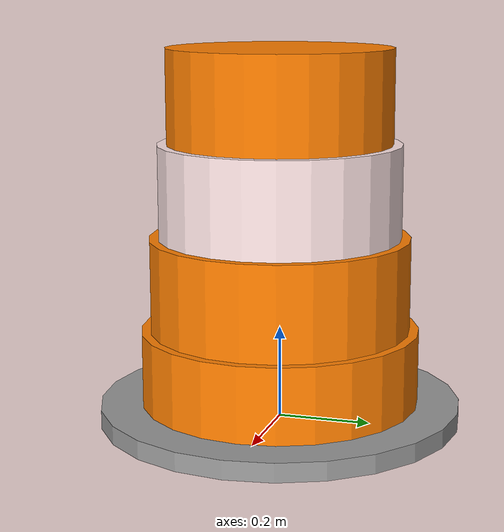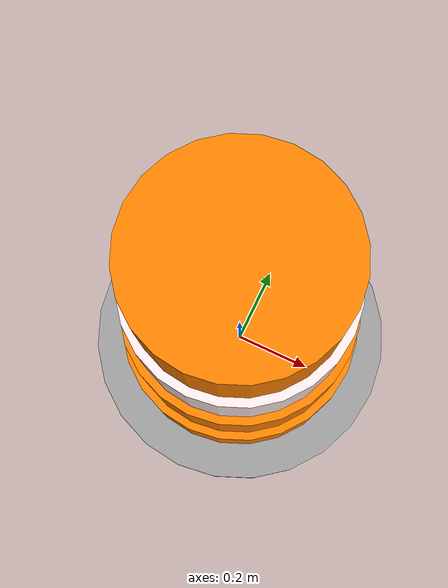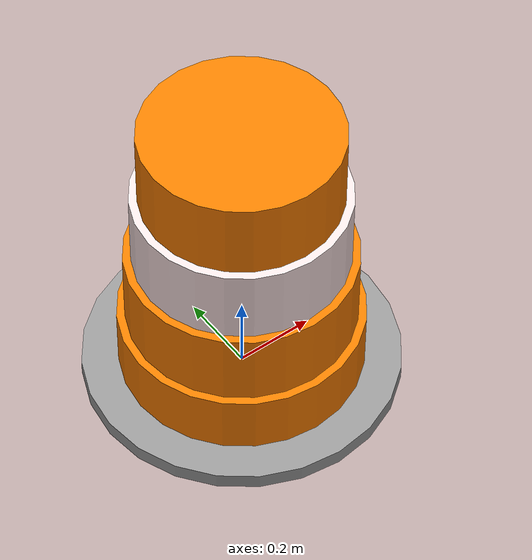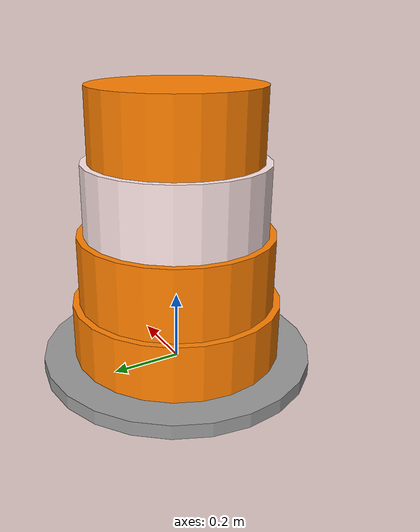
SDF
<?xml version='1.0'?>
<sdf version='1.6'>
  <model name='construction_barrel_orange'>
    <link name='rubber_skirt'>
      <pose frame=''>0 0 0.02 0 -0 0</pose>
      <inertial>
        <mass>1</mass>
        <inertia>
          <ixx>0.145833</ixx>
          <ixy>0</ixy>
          <ixz>0</ixz>
          <iyy>0.145833</iyy>
          <iyz>0</iyz>
          <izz>0.125</izz>
        </inertia>
        <pose frame=''>0 0 0 0 -0 0</pose>
      </inertial>
      <self_collide>0</self_collide>
      <kinematic>0</kinematic>
      <visual name='visual'>
        <pose frame=''>0 0 0 0 -0 0</pose>
        <geometry>
          <cylinder>
            <radius>0.39</radius>
            <length>0.04</length>
          </cylinder>
        </geometry>
        <material>
          <lighting>1</lighting>
          <script>
            <uri>file://media/materials/scripts/gazebo.material</uri>
            <name>Gazebo/Grey</name>
          </script>
          <shader type='pixel'>
            <normal_map>__default__</normal_map>
          </shader>
          <ambient>0.3 0.3 0.3 1</ambient>
          <diffuse>0.7 0.7 0.7 1</diffuse>
          <specular>0.01 0.01 0.01 1</specular>
          <emissive>0 0 0 1</emissive>
        </material>
        <transparency>0</transparency>
        <cast_shadows>1</cast_shadows>
      </visual>
      <collision name='collision'>
        <laser_retro>0</laser_retro>
        <max_contacts>10</max_contacts>
        <pose frame=''>0 0 0 0 -0 0</pose>
        <geometry>
          <cylinder>
            <radius>0.39</radius>
            <length>0.04</length>
          </cylinder>
        </geometry>
        <surface>
          <friction>
            <ode>
              <mu>1</mu>
              <mu2>1</mu2>
              <fdir1>0 0 0</fdir1>
              <slip1>0</slip1>
              <slip2>0</slip2>
            </ode>
            <torsional>
              <coefficient>1</coefficient>
              <patch_radius>0</patch_radius>
              <surface_radius>0</surface_radius>
              <use_patch_radius>1</use_patch_radius>
              <ode>
                <slip>0</slip>
              </ode>
            </torsional>
          </friction>
          <bounce>
            <restitution_coefficient>0</restitution_coefficient>
            <threshold>1e+06</threshold>
          </bounce>
          <contact>
            <collide_without_contact>0</collide_without_contact>
            <collide_without_contact_bitmask>1</collide_without_contact_bitmask>
            <collide_bitmask>1</collide_bitmask>
            <ode>
              <soft_cfm>0</soft_cfm>
              <soft_erp>0.2</soft_erp>
              <kp>1e+13</kp>
              <kd>1</kd>
              <max_vel>0.01</max_vel>
              <min_depth>0</min_depth>
            </ode>
            <bullet>
              <split_impulse>1</split_impulse>
              <split_impulse_penetration_threshold>-0.01</split_impulse_penetration_threshold>
              <soft_cfm>0</soft_cfm>
              <soft_erp>0.2</soft_erp>
              <kp>1e+13</kp>
              <kd>1</kd>
            </bullet>
          </contact>
        </surface>
      </collision>
    </link>
    <link name='drum_1'>
      <pose frame=''>0 0 0.1 0 -0 0</pose>
      <inertial>
        <mass>0.201505</mass>
        <inertia>
          <ixx>0.0132759</ixx>
          <ixy>0</ixy>
          <ixz>0</ixz>
          <iyy>0.0132759</iyy>
          <iyz>0</iyz>
          <izz>0.0251882</izz>
        </inertia>
        <pose frame=''>0 0 0 0 -0 0</pose>
      </inertial>
      <self_collide>0</self_collide>
      <kinematic>0</kinematic>
      <visual name='visual'>
        <geometry>
          <cylinder>
            <radius>0.3</radius>
            <length>0.2</length>
          </cylinder>
        </geometry>
        <material>
          <script>
            <name>Gazebo/Grey</name>
            <uri>file://media/materials/scripts/gazebo.material</uri>
          </script>
          <shader type='pixel'>
            <normal_map>__default__</normal_map>
          </shader>
          <ambient>1 0.5 0 1</ambient>
          <diffuse>1 0.5 0 1</diffuse>
          <specular>1 0.5 0 1</specular>
          <emissive>0 0 0 1</emissive>
        </material>
        <pose frame=''>0 0 0 0 -0 0</pose>
        <transparency>0</transparency>
        <cast_shadows>1</cast_shadows>
      </visual>
      <collision name='collision'>
        <laser_retro>0</laser_retro>
        <max_contacts>10</max_contacts>
        <pose frame=''>0 0 0 0 -0 0</pose>
        <geometry>
          <cylinder>
            <radius>0.3</radius>
            <length>0.2</length>
          </cylinder>
        </geometry>
        <surface>
          <friction>
            <ode>
              <mu>1</mu>
              <mu2>1</mu2>
              <fdir1>0 0 0</fdir1>
              <slip1>0</slip1>
              <slip2>0</slip2>
            </ode>
            <torsional>
              <coefficient>1</coefficient>
              <patch_radius>0</patch_radius>
              <surface_radius>0</surface_radius>
              <use_patch_radius>1</use_patch_radius>
              <ode>
                <slip>0</slip>
              </ode>
            </torsional>
          </friction>
          <bounce>
            <restitution_coefficient>0</restitution_coefficient>
            <threshold>1e+06</threshold>
          </bounce>
          <contact>
            <collide_without_contact>0</collide_without_contact>
            <collide_without_contact_bitmask>1</collide_without_contact_bitmask>
            <collide_bitmask>1</collide_bitmask>
            <ode>
              <soft_cfm>0</soft_cfm>
              <soft_erp>0.2</soft_erp>
              <kp>1e+13</kp>
              <kd>1</kd>
              <max_vel>0.01</max_vel>
              <min_depth>0</min_depth>
            </ode>
            <bullet>
              <split_impulse>1</split_impulse>
              <split_impulse_penetration_threshold>-0.01</split_impulse_penetration_threshold>
              <soft_cfm>0</soft_cfm>
              <soft_erp>0.2</soft_erp>
              <kp>1e+13</kp>
              <kd>1</kd>
            </bullet>
          </contact>
        </surface>
      </collision>
    </link>
    <link name='drum_2'>
      <pose frame=''>0 0 0.3 0 -0 0</pose>
      <inertial>
        <mass>0.201505</mass>
        <inertia>
          <ixx>0.0132759</ixx>
          <ixy>0</ixy>
          <ixz>0</ixz>
          <iyy>0.0132759</iyy>
          <iyz>0</iyz>
          <izz>0.0251882</izz>
        </inertia>
        <pose frame=''>0 0 0 0 -0 0</pose>
      </inertial>
      <self_collide>0</self_collide>
      <kinematic>0</kinematic>
      <visual name='visual'>
        <geometry>
          <cylinder>
            <radius>0.28</radius>
            <length>0.2</length>
          </cylinder>
        </geometry>
        <material>
          <script>
            <name>Gazebo/Grey</name>
            <uri>file://media/materials/scripts/gazebo.material</uri>
          </script>
          <shader type='pixel'>
            <normal_map>__default__</normal_map>
          </shader>
          <ambient>1 0.5 0 1</ambient>
          <diffuse>1 0.5 0 1</diffuse>
          <specular>1 0.5 0 1</specular>
          <emissive>0 0 0 1</emissive>
        </material>
        <pose frame=''>0 0 0 0 -0 0</pose>
        <transparency>0</transparency>
        <cast_shadows>1</cast_shadows>
      </visual>
      <collision name='collision'>
        <laser_retro>0</laser_retro>
        <max_contacts>10</max_contacts>
        <pose frame=''>0 0 0 0 -0 0</pose>
        <geometry>
          <cylinder>
            <radius>0.28</radius>
            <length>0.2</length>
          </cylinder>
        </geometry>
        <surface>
          <friction>
            <ode>
              <mu>1</mu>
              <mu2>1</mu2>
              <fdir1>0 0 0</fdir1>
              <slip1>0</slip1>
              <slip2>0</slip2>
            </ode>
            <torsional>
              <coefficient>1</coefficient>
              <patch_radius>0</patch_radius>
              <surface_radius>0</surface_radius>
              <use_patch_radius>1</use_patch_radius>
              <ode>
                <slip>0</slip>
              </ode>
            </torsional>
          </friction>
          <bounce>
            <restitution_coefficient>0</restitution_coefficient>
            <threshold>1e+06</threshold>
          </bounce>
          <contact>
            <collide_without_contact>0</collide_without_contact>
            <collide_without_contact_bitmask>1</collide_without_contact_bitmask>
            <collide_bitmask>1</collide_bitmask>
            <ode>
              <soft_cfm>0</soft_cfm>
              <soft_erp>0.2</soft_erp>
              <kp>1e+13</kp>
              <kd>1</kd>
              <max_vel>0.01</max_vel>
              <min_depth>0</min_depth>
            </ode>
            <bullet>
              <split_impulse>1</split_impulse>
              <split_impulse_penetration_threshold>-0.01</split_impulse_penetration_threshold>
              <soft_cfm>0</soft_cfm>
              <soft_erp>0.2</soft_erp>
              <kp>1e+13</kp>
              <kd>1</kd>
            </bullet>
          </contact>
        </surface>
      </collision>
    </link>
    <link name='drum_3'>
      <pose frame=''>0 0 0.5 0 -0 0</pose>
      <inertial>
        <mass>0.201505</mass>
        <inertia>
          <ixx>0.0132759</ixx>
          <ixy>0</ixy>
          <ixz>0</ixz>
          <iyy>0.0132759</iyy>
          <iyz>0</iyz>
          <izz>0.0251882</izz>
        </inertia>
        <pose frame=''>0 0 0 0 -0 0</pose>
      </inertial>
      <self_collide>0</self_collide>
      <kinematic>0</kinematic>
      <visual name='visual'>
        <geometry>
          <cylinder>
            <radius>0.26</radius>
            <length>0.2</length>
          </cylinder>
        </geometry>
        <material>
          <script>
            <name>Gazebo/Grey</name>
            <uri>file://media/materials/scripts/gazebo.material</uri>
          </script>
          <shader type='pixel'>
            <normal_map>__default__</normal_map>
          </shader>
          <ambient>1 0.9 0.9 1</ambient>
          <diffuse>1 0.9 0.9 1</diffuse>
          <specular>1 0.9 0.9 1</specular>
          <emissive>0 0 0 1</emissive>
        </material>
        <pose frame=''>0 0 0 0 -0 0</pose>
        <transparency>0</transparency>
        <cast_shadows>1</cast_shadows>
      </visual>
      <collision name='collision'>
        <laser_retro>0</laser_retro>
        <max_contacts>10</max_contacts>
        <pose frame=''>0 0 0 0 -0 0</pose>
        <geometry>
          <cylinder>
            <radius>0.26</radius>
            <length>0.2</length>
          </cylinder>
        </geometry>
        <surface>
          <friction>
            <ode>
              <mu>1</mu>
              <mu2>1</mu2>
              <fdir1>0 0 0</fdir1>
              <slip1>0</slip1>
              <slip2>0</slip2>
            </ode>
            <torsional>
              <coefficient>1</coefficient>
              <patch_radius>0</patch_radius>
              <surface_radius>0</surface_radius>
              <use_patch_radius>1</use_patch_radius>
              <ode>
                <slip>0</slip>
              </ode>
            </torsional>
          </friction>
          <bounce>
            <restitution_coefficient>0</restitution_coefficient>
            <threshold>1e+06</threshold>
          </bounce>
          <contact>
            <collide_without_contact>0</collide_without_contact>
            <collide_without_contact_bitmask>1</collide_without_contact_bitmask>
            <collide_bitmask>1</collide_bitmask>
            <ode>
              <soft_cfm>0</soft_cfm>
              <soft_erp>0.2</soft_erp>
              <kp>1e+13</kp>
              <kd>1</kd>
              <max_vel>0.01</max_vel>
              <min_depth>0</min_depth>
            </ode>
            <bullet>
              <split_impulse>1</split_impulse>
              <split_impulse_penetration_threshold>-0.01</split_impulse_penetration_threshold>
              <soft_cfm>0</soft_cfm>
              <soft_erp>0.2</soft_erp>
              <kp>1e+13</kp>
              <kd>1</kd>
            </bullet>
          </contact>
        </surface>
      </collision>
    </link>
    <link name='drum_4'>
      <pose frame=''>0 0 0.7 0 -0 0</pose>
      <inertial>
        <mass>0.201505</mass>
        <inertia>
          <ixx>0.0132759</ixx>
          <ixy>0</ixy>
          <ixz>0</ixz>
          <iyy>0.0132759</iyy>
          <iyz>0</iyz>
          <izz>0.0251882</izz>
        </inertia>
        <pose frame=''>0 0 0 0 -0 0</pose>
      </inertial>
      <self_collide>0</self_collide>
      <kinematic>0</kinematic>
      <visual name='visual'>
        <geometry>
          <cylinder>
            <radius>0.24</radius>
            <length>0.2</length>
          </cylinder>
        </geometry>
        <material>
          <script>
            <name>Gazebo/Grey</name>
            <uri>file://media/materials/scripts/gazebo.material</uri>
          </script>
          <shader type='pixel'>
            <normal_map>__default__</normal_map>
          </shader>
          <ambient>1 0.5 0 1</ambient>
          <diffuse>1 0.5 0 1</diffuse>
          <specular>1 0.5 0 1</specular>
          <emissive>0 0 0 1</emissive>
        </material>
        <pose frame=''>0 0 0 0 -0 0</pose>
        <transparency>0</transparency>
        <cast_shadows>1</cast_shadows>
      </visual>
      <collision name='collision'>
        <laser_retro>0</laser_retro>
        <max_contacts>10</max_contacts>
        <pose frame=''>0 0 0 0 -0 0</pose>
        <geometry>
          <cylinder>
            <radius>0.24</radius>
            <length>0.2</length>
          </cylinder>
        </geometry>
        <surface>
          <friction>
            <ode>
              <mu>1</mu>
              <mu2>1</mu2>
              <fdir1>0 0 0</fdir1>
              <slip1>0</slip1>
              <slip2>0</slip2>
            </ode>
            <torsional>
              <coefficient>1</coefficient>
              <patch_radius>0</patch_radius>
              <surface_radius>0</surface_radius>
              <use_patch_radius>1</use_patch_radius>
              <ode>
                <slip>0</slip>
              </ode>
            </torsional>
          </friction>
          <bounce>
            <restitution_coefficient>0</restitution_coefficient>
            <threshold>1e+06</threshold>
          </bounce>
          <contact>
            <collide_without_contact>0</collide_without_contact>
            <collide_without_contact_bitmask>1</collide_without_contact_bitmask>
            <collide_bitmask>1</collide_bitmask>
            <ode>
              <soft_cfm>0</soft_cfm>
              <soft_erp>0.2</soft_erp>
              <kp>1e+13</kp>
              <kd>1</kd>
              <max_vel>0.01</max_vel>
              <min_depth>0</min_depth>
            </ode>
            <bullet>
              <split_impulse>1</split_impulse>
              <split_impulse_penetration_threshold>-0.01</split_impulse_penetration_threshold>
              <soft_cfm>0</soft_cfm>
              <soft_erp>0.2</soft_erp>
              <kp>1e+13</kp>
              <kd>1</kd>
            </bullet>
          </contact>
        </surface>
      </collision>
    </link>
    <joint name='drum_1_JOINT_1' type='fixed'>
      <parent>drum_1</parent>
      <child>drum_2</child>
      <pose frame=''>0 0 0 0 -0 0</pose>
      <physics>
        <ode>
          <limit>
            <cfm>0</cfm>
            <erp>0.2</erp>
          </limit>
          <suspension>
            <cfm>0</cfm>
            <erp>0.2</erp>
          </suspension>
        </ode>
      </physics>
    </joint>
    <joint name='drum_2_JOINT_3' type='fixed'>
      <parent>drum_2</parent>
      <child>drum_3</child>
      <pose frame=''>0 0 0 0 -0 0</pose>
      <physics>
        <ode>
          <limit>
            <cfm>0</cfm>
            <erp>0.2</erp>
          </limit>
          <suspension>
            <cfm>0</cfm>
            <erp>0.2</erp>
          </suspension>
        </ode>
      </physics>
    </joint>
    <joint name='drum_3_JOINT_2' type='fixed'>
      <parent>drum_3</parent>
      <child>drum_4</child>
      <pose frame=''>0 0 0 0 -0 0</pose>
      <physics>
        <ode>
          <limit>
            <cfm>0</cfm>
            <erp>0.2</erp>
          </limit>
          <suspension>
            <cfm>0</cfm>
            <erp>0.2</erp>
          </suspension>
        </ode>
      </physics>
    </joint>
    <joint name='rubber_skirt_JOINT_0' type='fixed'>
      <parent>rubber_skirt</parent>
      <child>drum_1</child>
      <pose frame=''>0 0 0 0 -0 0</pose>
      <physics>
        <ode>
          <limit>
            <cfm>0</cfm>
            <erp>0.2</erp>
          </limit>
          <suspension>
            <cfm>0</cfm>
            <erp>0.2</erp>
          </suspension>
        </ode>
      </physics>
    </joint>
    <static>1</static>
    <allow_auto_disable>1</allow_auto_disable>
  </model>
</sdf>
